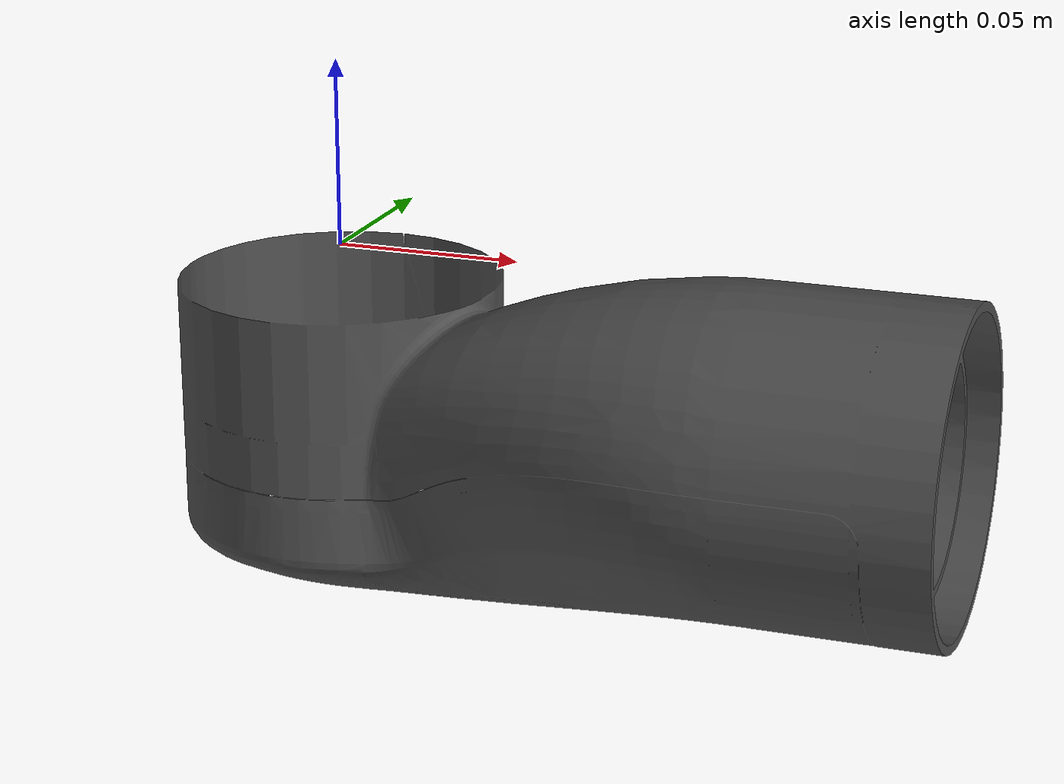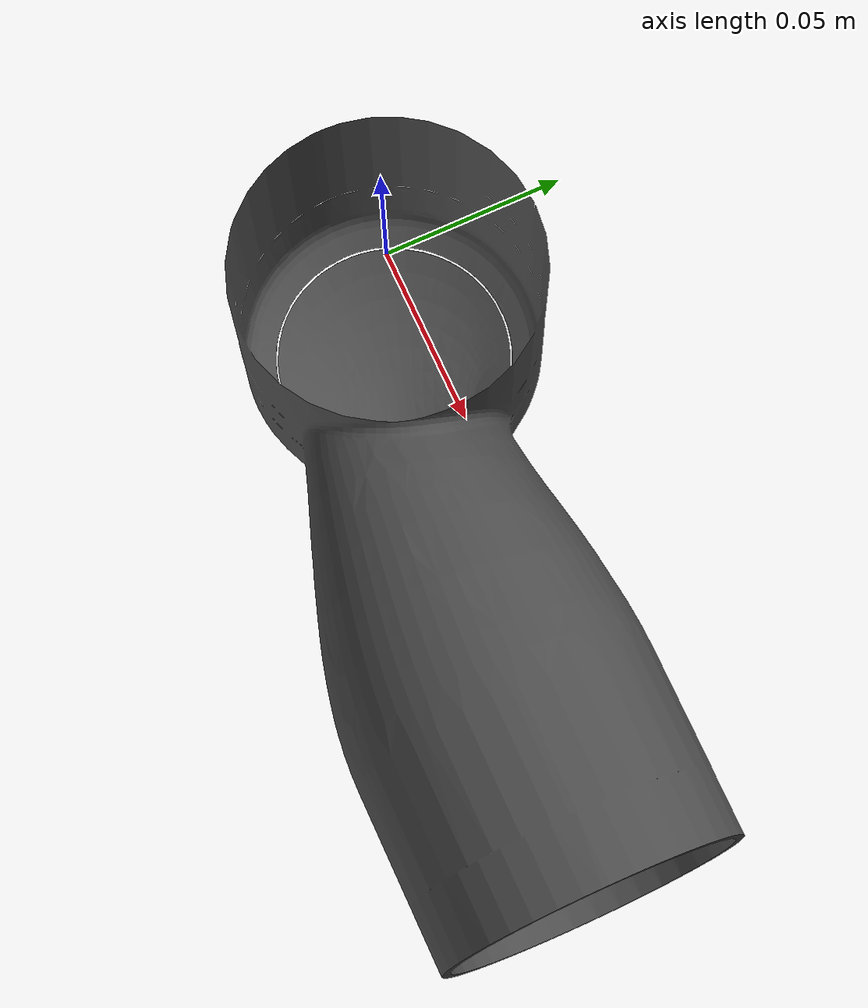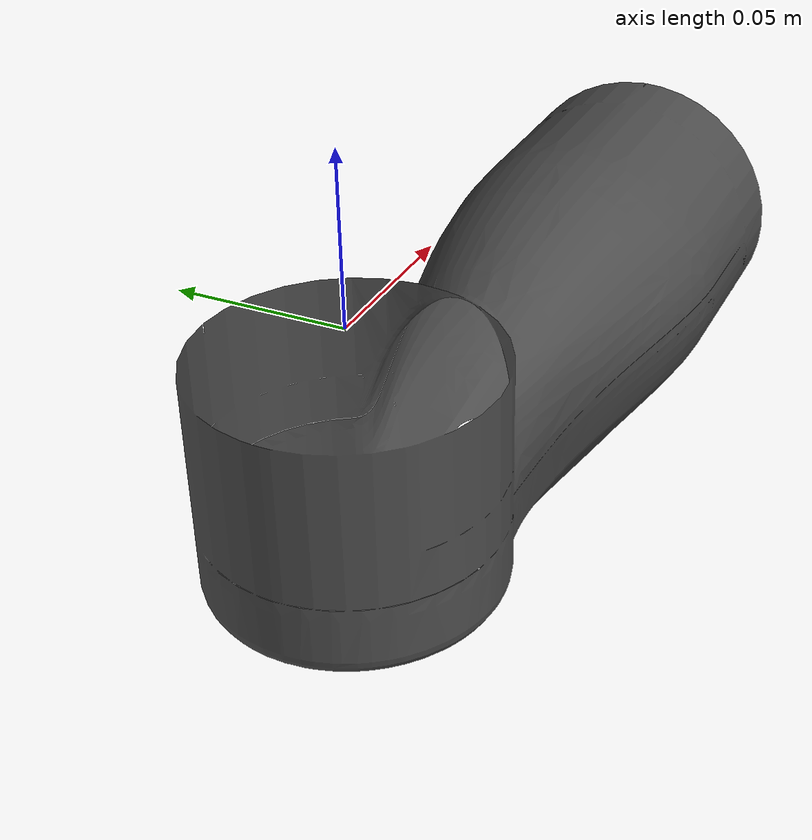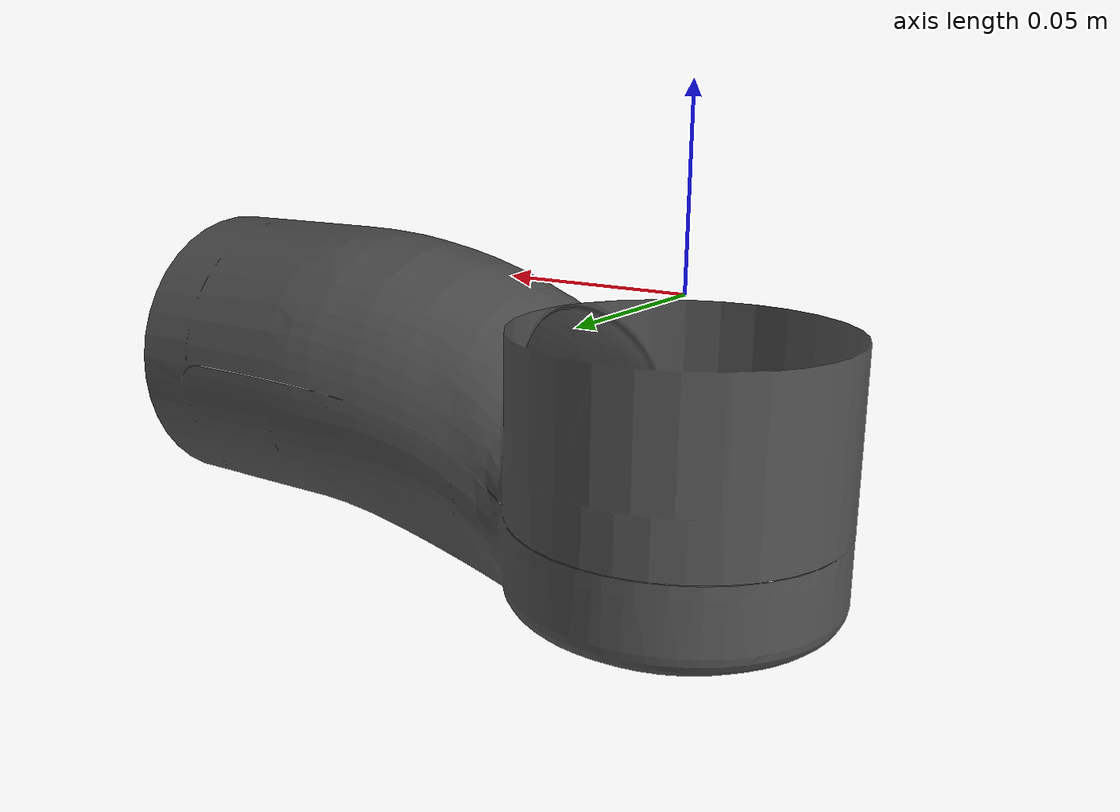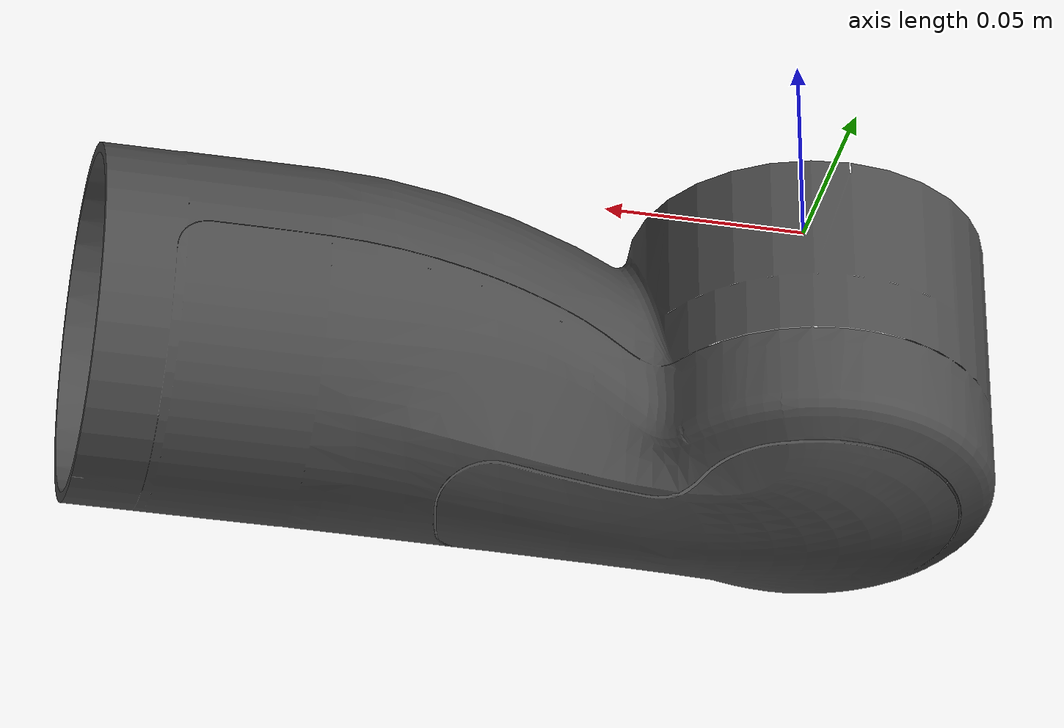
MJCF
<mujoco model="arm2_link">
  <default>
    <default class="visual">
      <geom group="2" type="mesh" contype="0" conaffinity="0"/>
    </default>
    <default class="collision">
      <geom group="3" type="mesh"/>
    </default>
  </default>
  <asset>
    <material name="mtl_arm2_link" specular="0.20000000000000004" shininess="1.0" rgba="0.29803922 0.29803922 0.29803922 1.0"/>
    <mesh file="arm2_link.obj"/>
  </asset>
  <worldbody>
    <body name="arm2_link">
      <geom material="mtl_arm2_link" mesh="arm2_link" class="visual"/>
      <geom mesh="arm2_link" class="collision"/>
    </body>
  </worldbody>
</mujoco>
